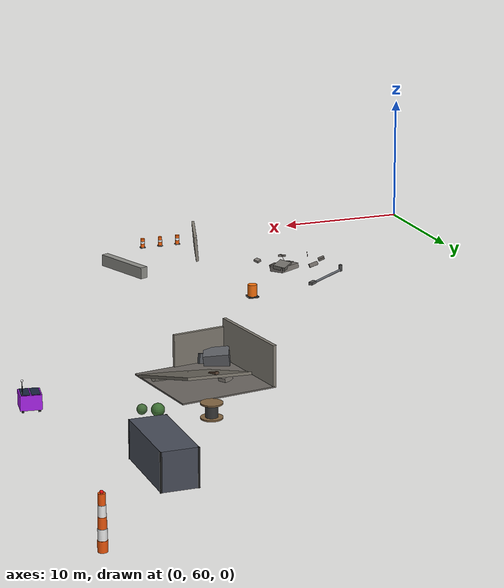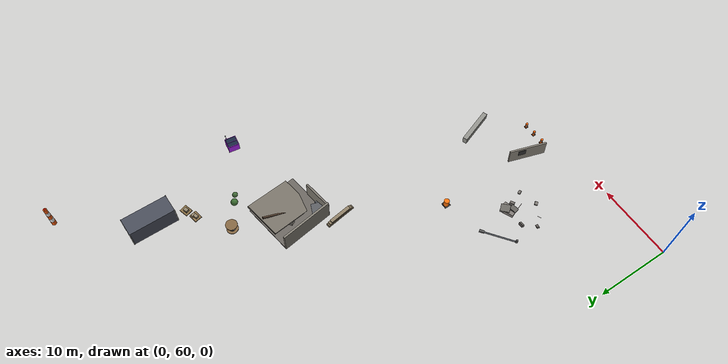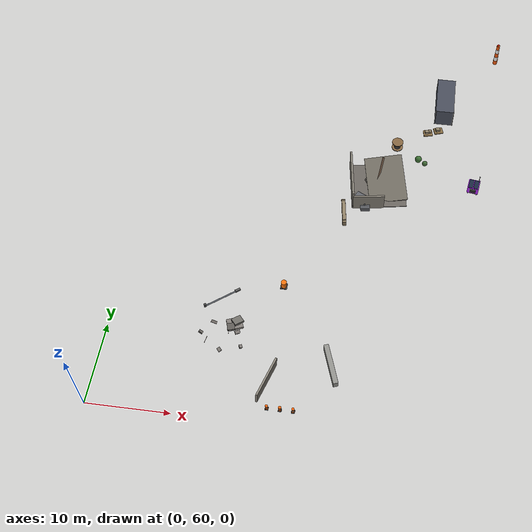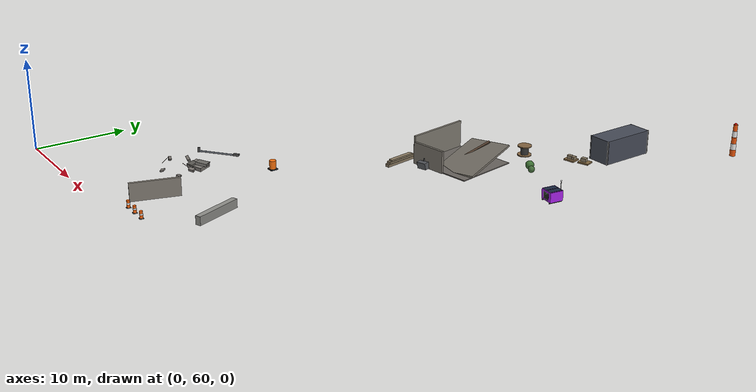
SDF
<sdf version="1.9">
 <world name="box_survey">
  <model name="survey_tower_ne">
   <static>true</static>
   <pose>45.0 120.0 0 0 0 0</pose>
   <link name="link">
    <collision name="col">
     <geometry><cylinder><radius>0.35</radius><length>3.5</length></cylinder></geometry>
     <pose>0 0 1.75 0 0 0</pose>
    </collision>
    <visual name="b1">
     <pose>0 0 0.35 0 0 0</pose>
     <geometry><cylinder><radius>0.30</radius><length>0.7</length></cylinder></geometry>
     <material><ambient>0.95 0.35 0.05 1</ambient><diffuse>0.95 0.35 0.05 1</diffuse></material>
    </visual>
    <visual name="b2">
     <pose>0 0 1.05 0 0 0</pose>
     <geometry><cylinder><radius>0.28</radius><length>0.7</length></cylinder></geometry>
     <material><ambient>0.95 0.95 0.95 1</ambient><diffuse>0.95 0.95 0.95 1</diffuse></material>
    </visual>
    <visual name="b3">
     <pose>0 0 1.75 0 0 0</pose>
     <geometry><cylinder><radius>0.26</radius><length>0.7</length></cylinder></geometry>
     <material><ambient>0.95 0.35 0.05 1</ambient><diffuse>0.95 0.35 0.05 1</diffuse></material>
    </visual>
    <visual name="b4">
     <pose>0 0 2.45 0 0 0</pose>
     <geometry><cylinder><radius>0.24</radius><length>0.7</length></cylinder></geometry>
     <material><ambient>0.95 0.95 0.95 1</ambient><diffuse>0.95 0.95 0.95 1</diffuse></material>
    </visual>
    <visual name="b5">
     <pose>0 0 3.15 0 0 0</pose>
     <geometry><cylinder><radius>0.22</radius><length>0.7</length></cylinder></geometry>
     <material><ambient>0.95 0.35 0.05 1</ambient><diffuse>0.95 0.35 0.05 1</diffuse></material>
    </visual>
    <visual name="beacon">
     <pose>0 0 3.55 0 0 0</pose>
     <geometry><sphere><radius>0.12</radius></sphere></geometry>
     <material>
      <ambient>0.9 0.05 0.05 1</ambient>
      <diffuse>0.9 0.05 0.05 1</diffuse>
      <emissive>0.7 0.05 0.05 1</emissive>
     </material>
    </visual>
   </link>
  </model>
  <model name="rock_outcrop_beta">
   <static>true</static>
   <pose>28.0 92.0 0 0 0 -0.4</pose>
   <link name="link">
    <collision name="c1">
     <pose>0 0 0.5 0 0 0</pose>
     <geometry><box><size>1.8 1.4 1.0</size></box></geometry>
    </collision>
    <visual name="v1">
     <pose>0 0 0.5 -0.15 0.1 0</pose>
     <geometry><box><size>1.8 1.4 1.0</size></box></geometry>
     <material><ambient>0.33 0.34 0.36 1</ambient><diffuse>0.37 0.38 0.40 1</diffuse></material>
    </visual>
    <visual name="v2">
     <pose>0.9 -0.5 0.35 0.15 -0.1 0.5</pose>
     <geometry><box><size>1.2 1.1 0.7</size></box></geometry>
     <material><ambient>0.29 0.30 0.32 1</ambient><diffuse>0.33 0.34 0.36 1</diffuse></material>
    </visual>
   </link>
  </model>
  <model name="jersey_barrier_3">
   <static>true</static>
   <pose>27.0 68.0 0 0 0 0.35</pose>
   <link name="link">
    <collision name="col">
     <pose>0 0 0.45 0 0 0</pose>
     <geometry><box><size>0.6 5.0 0.9</size></box></geometry>
    </collision>
    <visual name="vis">
     <pose>0 0 0.45 0 0 0</pose>
     <geometry><box><size>0.6 5.0 0.9</size></box></geometry>
     <material><ambient>0.53 0.53 0.51 1</ambient><diffuse>0.57 0.57 0.55 1</diffuse></material>
    </visual>
   </link>
  </model>
  <model name="iso_container_east">
   <static>true</static>
   <pose>38.0 110.0 0 0 0 0</pose>
   <link name="link">
    <collision name="col">
     <pose>0 0 1.3 0 0 0</pose>
     <geometry><box><size>2.44 6.06 2.60</size></box></geometry>
    </collision>
    <visual name="body">
     <pose>0 0 1.3 0 0 0</pose>
     <geometry><box><size>2.44 6.06 2.60</size></box></geometry>
     <material>
      <ambient>0.24 0.26 0.30 1</ambient>
      <diffuse>0.28 0.30 0.35 1</diffuse>
      <specular>0.1 0.1 0.1 1</specular>
     </material>
    </visual>
    <visual name="corner_post_1">
     <pose>-1.20 -3.00 1.3 0 0 0</pose>
     <geometry><box><size>0.12 0.12 2.60</size></box></geometry>
     <material><ambient>0.12 0.12 0.12 1</ambient><diffuse>0.12 0.12 0.12 1</diffuse></material>
    </visual>
    <visual name="corner_post_2">
     <pose>1.20 -3.00 1.3 0 0 0</pose>
     <geometry><box><size>0.12 0.12 2.60</size></box></geometry>
     <material><ambient>0.12 0.12 0.12 1</ambient><diffuse>0.12 0.12 0.12 1</diffuse></material>
    </visual>
    <visual name="corner_post_3">
     <pose>-1.20 3.00 1.3 0 0 0</pose>
     <geometry><box><size>0.12 0.12 2.60</size></box></geometry>
     <material><ambient>0.12 0.12 0.12 1</ambient><diffuse>0.12 0.12 0.12 1</diffuse></material>
    </visual>
    <visual name="corner_post_4">
     <pose>1.20 3.00 1.3 0 0 0</pose>
     <geometry><box><size>0.12 0.12 2.60</size></box></geometry>
     <material><ambient>0.12 0.12 0.12 1</ambient><diffuse>0.12 0.12 0.12 1</diffuse></material>
    </visual>
   </link>
  </model>
  <model name="rubble_debris_cluster_1">
   <static>true</static>
   <pose>15.0 72.0 0 0 0 0.4</pose>
   <link name="link">
    <collision name="col">
     <pose>0 0 0.35 0 0 0</pose>
     <geometry><box><size>2.2 1.8 0.7</size></box></geometry>
    </collision>
    <visual name="slab1">
     <pose>0 0 0.2 0.1 0.05 0</pose>
     <geometry><box><size>1.8 1.4 0.4</size></box></geometry>
     <material><ambient>0.45 0.44 0.42 1</ambient><diffuse>0.50 0.48 0.46 1</diffuse></material>
    </visual>
    <visual name="slab2">
     <pose>0.4 0.2 0.45 -0.1 0.15 0.3</pose>
     <geometry><box><size>1.2 1.0 0.3</size></box></geometry>
     <material><ambient>0.40 0.39 0.37 1</ambient><diffuse>0.44 0.43 0.41 1</diffuse></material>
    </visual>
    <visual name="stone">
     <pose>-0.5 -0.3 0.25 0.2 -0.1 -0.2</pose>
     <geometry><box><size>0.9 0.8 0.5</size></box></geometry>
     <material><ambient>0.35 0.34 0.32 1</ambient><diffuse>0.38 0.37 0.35 1</diffuse></material>
    </visual>
   </link>
  </model>
  <model name="target_cube_purple">
   <static>true</static>
   <pose>42.5 96.0 0 0 0 -0.15</pose>
   <link name="link">
    <collision name="col">
     <pose>0 0 0.6 0 0 0</pose>
     <geometry><box><size>1.5 1.5 1.2</size></box></geometry>
    </collision>
    <visual name="skid_left">
     <pose>-0.55 0 0.06 0 0 0</pose>
     <geometry><box><size>0.15 1.5 0.12</size></box></geometry>
     <material><ambient>0.12 0.12 0.12 1</ambient><diffuse>0.14 0.14 0.14 1</diffuse></material>
    </visual>
    <visual name="skid_right">
     <pose>0.55 0 0.06 0 0 0</pose>
     <geometry><box><size>0.15 1.5 0.12</size></box></geometry>
     <material><ambient>0.12 0.12 0.12 1</ambient><diffuse>0.14 0.14 0.14 1</diffuse></material>
    </visual>
    <visual name="body">
     <pose>0 0 0.64 0 0 0</pose>
     <geometry><box><size>1.46 1.46 1.04</size></box></geometry>
     <material>
      <ambient>0.62 0.12 0.88 1</ambient>
      <diffuse>0.68 0.14 0.94 1</diffuse>
      <specular>0.3 0.3 0.3 1</specular>
     </material>
    </visual>
    <visual name="solar_l">
     <pose>-0.34 0 1.18 0 0 0</pose>
     <geometry><box><size>0.60 1.34 0.03</size></box></geometry>
     <material>
      <ambient>0.08 0.12 0.20 1</ambient>
      <diffuse>0.10 0.15 0.25 1</diffuse>
      <specular>0.6 0.6 0.6 1</specular>
     </material>
    </visual>
    <visual name="solar_r">
     <pose>0.34 0 1.18 0 0 0</pose>
     <geometry><box><size>0.60 1.34 0.03</size></box></geometry>
     <material>
      <ambient>0.08 0.12 0.20 1</ambient>
      <diffuse>0.10 0.15 0.25 1</diffuse>
      <specular>0.6 0.6 0.6 1</specular>
     </material>
    </visual>
    <visual name="antenna_mast">
     <pose>0.55 0.55 1.65 0 0 0</pose>
     <geometry><cylinder><radius>0.025</radius><length>0.90</length></cylinder></geometry>
     <material><ambient>0.15 0.15 0.15 1</ambient><diffuse>0.20 0.20 0.20 1</diffuse></material>
    </visual>
    <visual name="radome">
     <pose>0.55 0.55 2.15 0 0 0</pose>
     <geometry><sphere><radius>0.08</radius></sphere></geometry>
     <material><ambient>0.92 0.92 0.92 1</ambient><diffuse>0.95 0.95 0.95 1</diffuse></material>
    </visual>
    <visual name="faceplate">
     <pose>0 -0.735 0.62 0 0 0</pose>
     <geometry><box><size>0.80 0.01 0.70</size></box></geometry>
     <material><ambient>0.10 0.10 0.10 1</ambient><diffuse>0.12 0.12 0.12 1</diffuse></material>
    </visual>
    <visual name="led_cluster">
     <pose>0 -0.742 0.85 0 0 0</pose>
     <geometry><box><size>0.25 0.01 0.06</size></box></geometry>
     <material>
      <ambient>0.1 0.8 0.2 1</ambient>
      <diffuse>0.1 0.9 0.2 1</diffuse>
      <emissive>0.2 0.8 0.2 1</emissive>
     </material>
    </visual>
   </link>
  </model>
  <model name="marker_orange_pylon">
   <static>true</static>
   <pose>20.0 78.0 0 0 0 0</pose>
   <link name="link">
    <collision name="col">
     <pose>0 0 0.5 0 0 0</pose>
     <geometry><cylinder><radius>0.4</radius><length>1.0</length></cylinder></geometry>
    </collision>
    <visual name="cone_base">
     <pose>0 0 0.05 0 0 0</pose>
     <geometry><box><size>0.8 0.8 0.1</size></box></geometry>
     <material><ambient>0.2 0.2 0.2 1</ambient><diffuse>0.2 0.2 0.2 1</diffuse></material>
    </visual>
    <visual name="cone_body">
     <pose>0 0 0.55 0 0 0</pose>
     <geometry><cylinder><radius>0.35</radius><length>0.9</length></cylinder></geometry>
     <material><ambient>0.95 0.42 0.04 1</ambient><diffuse>0.98 0.45 0.05 1</diffuse></material>
    </visual>
   </link>
  </model>
  <model name="collapsed_building">
   <static>true</static>
   <pose>30.0 95.0 0 0 0 0.15</pose>
   <link name="link">
    <visual name="wall_w">
     <pose>-3.5 0 1.5 0 0 0</pose>
     <geometry><box><size>0.25 7.0 3.0</size></box></geometry>
     <material><ambient>0.48 0.46 0.42 1</ambient><diffuse>0.52 0.50 0.46 1</diffuse></material>
    </visual>
    <collision name="col_w">
     <pose>-3.5 0 1.5 0 0 0</pose>
     <geometry><box><size>0.25 7.0 3.0</size></box></geometry>
    </collision>
    <visual name="wall_s">
     <pose>-1.5 -3.5 1.2 0 0 0</pose>
     <geometry><box><size>4.0 0.25 2.4</size></box></geometry>
     <material><ambient>0.46 0.44 0.40 1</ambient><diffuse>0.50 0.48 0.44 1</diffuse></material>
    </visual>
    <collision name="col_s">
     <pose>-1.5 -3.5 1.2 0 0 0</pose>
     <geometry><box><size>4.0 0.25 2.4</size></box></geometry>
    </collision>
    <visual name="roof_slab">
     <pose>1.0 0.5 0.8 0.25 -0.1 0.05</pose>
     <geometry><box><size>5.0 6.5 0.20</size></box></geometry>
     <material><ambient>0.42 0.40 0.36 1</ambient><diffuse>0.46 0.44 0.40 1</diffuse></material>
    </visual>
    <collision name="col_roof">
     <pose>1.0 0.5 0.8 0.25 -0.1 0.05</pose>
     <geometry><box><size>5.0 6.5 0.20</size></box></geometry>
    </collision>
    <visual name="floor">
     <pose>0 0 0.05 0 0 0</pose>
     <geometry><box><size>7.0 7.0 0.10</size></box></geometry>
     <material><ambient>0.38 0.36 0.34 1</ambient><diffuse>0.42 0.40 0.38 1</diffuse></material>
    </visual>
    <visual name="column">
     <pose>2.0 -1.5 0.2 0 1.4 0.3</pose>
     <geometry><cylinder><radius>0.20</radius><length>2.8</length></cylinder></geometry>
     <material><ambient>0.50 0.48 0.44 1</ambient><diffuse>0.54 0.52 0.48 1</diffuse></material>
    </visual>
    <visual name="ibeam">
     <pose>0.2 1.2 0.95 0.35 0.25 -0.2</pose>
     <geometry><box><size>0.25 4.8 0.18</size></box></geometry>
     <material>
      <ambient>0.25 0.18 0.14 1</ambient>
      <diffuse>0.32 0.24 0.18 1</diffuse>
      <specular>0.2 0.2 0.2 1</specular>
     </material>
    </visual>
    <visual name="block_1">
     <pose>-1.2 0.8 0.25 0.1 0.2 0.4</pose>
     <geometry><box><size>0.8 0.6 0.4</size></box></geometry>
     <material><ambient>0.45 0.43 0.40 1</ambient><diffuse>0.49 0.47 0.44 1</diffuse></material>
    </visual>
    <visual name="block_2">
     <pose>0.8 -0.8 0.20 -0.2 0.1 0.6</pose>
     <geometry><box><size>0.7 0.5 0.35</size></box></geometry>
     <material><ambient>0.43 0.41 0.38 1</ambient><diffuse>0.47 0.45 0.42 1</diffuse></material>
    </visual>
   </link>
  </model>
  <model name="rubble_scatter_1">
   <static>true</static>
   <pose>13.0 70.0 0 0 0 0</pose>
   <link name="link">
    <visual name="frag_a">
     <pose>2.5 1.0 0.12 0.3 0.1 0.5</pose>
     <geometry><box><size>0.6 0.4 0.25</size></box></geometry>
     <material><ambient>0.42 0.40 0.38 1</ambient><diffuse>0.46 0.44 0.42 1</diffuse></material>
    </visual>
    <visual name="frag_b">
     <pose>-1.8 0.5 0.10 -0.2 0.4 -0.3</pose>
     <geometry><box><size>0.5 0.3 0.20</size></box></geometry>
     <material><ambient>0.38 0.36 0.34 1</ambient><diffuse>0.42 0.40 0.38 1</diffuse></material>
    </visual>
    <visual name="frag_c">
     <pose>0.8 -1.5 0.08 0.1 -0.2 0.7</pose>
     <geometry><box><size>0.4 0.5 0.15</size></box></geometry>
     <material><ambient>0.44 0.42 0.40 1</ambient><diffuse>0.48 0.46 0.44 1</diffuse></material>
    </visual>
    <visual name="frag_d">
     <pose>-0.5 2.0 0.15 0.4 0.3 -0.1</pose>
     <geometry><box><size>0.7 0.3 0.30</size></box></geometry>
     <material><ambient>0.40 0.38 0.36 1</ambient><diffuse>0.44 0.42 0.40 1</diffuse></material>
    </visual>
    <visual name="frag_e">
     <pose>3.2 -0.8 0.10 -0.15 0.25 0.4</pose>
     <geometry><box><size>0.35 0.45 0.18</size></box></geometry>
     <material><ambient>0.46 0.44 0.42 1</ambient><diffuse>0.50 0.48 0.46 1</diffuse></material>
    </visual>
    <visual name="rebar_a">
     <pose>1.5 0.8 0.3 0.8 0.2 0</pose>
     <geometry><cylinder><radius>0.015</radius><length>1.2</length></cylinder></geometry>
     <material><ambient>0.30 0.25 0.20 1</ambient><diffuse>0.35 0.28 0.22 1</diffuse></material>
    </visual>
    <visual name="rebar_b">
     <pose>-1.0 -0.5 0.25 -0.5 0.6 0.3</pose>
     <geometry><cylinder><radius>0.015</radius><length>0.9</length></cylinder></geometry>
     <material><ambient>0.32 0.26 0.20 1</ambient><diffuse>0.36 0.30 0.24 1</diffuse></material>
    </visual>
   </link>
  </model>
  <model name="fallen_street_lamp">
   <static>true</static>
   <pose>11.0 74.0 0 0 0 0.65</pose>
   <link name="link">
    <visual name="stub">
     <pose>0 0 0.25 0 0 0</pose>
     <geometry><cylinder><radius>0.14</radius><length>0.50</length></cylinder></geometry>
     <material><ambient>0.25 0.25 0.25 1</ambient><diffuse>0.30 0.30 0.30 1</diffuse></material>
    </visual>
    <visual name="shaft">
     <pose>2.2 0 0.10 0 1.5708 0</pose>
     <geometry><cylinder><radius>0.09</radius><length>4.2</length></cylinder></geometry>
     <material><ambient>0.35 0.36 0.38 1</ambient><diffuse>0.40 0.42 0.45 1</diffuse></material>
    </visual>
    <visual name="fixture">
     <pose>4.4 0 0.15 0 0 0</pose>
     <geometry><box><size>0.65 0.30 0.22</size></box></geometry>
     <material><ambient>0.30 0.30 0.30 1</ambient><diffuse>0.35 0.35 0.35 1</diffuse></material>
    </visual>
   </link>
  </model>
  <model name="industrial_cable_spool">
   <static>true</static>
   <pose>32.0 102.0 0 0 0 0.5</pose>
   <link name="link">
    <visual name="flange_bot">
     <pose>0 0 0.05 0 0 0</pose>
     <geometry><cylinder><radius>0.75</radius><length>0.10</length></cylinder></geometry>
     <material><ambient>0.45 0.35 0.22 1</ambient><diffuse>0.52 0.40 0.26 1</diffuse></material>
    </visual>
    <visual name="drum">
     <pose>0 0 0.55 0 0 0</pose>
     <geometry><cylinder><radius>0.42</radius><length>0.90</length></cylinder></geometry>
     <material><ambient>0.18 0.18 0.18 1</ambient><diffuse>0.22 0.22 0.22 1</diffuse></material>
    </visual>
    <visual name="flange_top">
     <pose>0 0 1.05 0 0 0</pose>
     <geometry><cylinder><radius>0.75</radius><length>0.10</length></cylinder></geometry>
     <material><ambient>0.45 0.35 0.22 1</ambient><diffuse>0.52 0.40 0.26 1</diffuse></material>
    </visual>
    <collision name="col">
     <pose>0 0 0.55 0 0 0</pose>
     <geometry><cylinder><radius>0.75</radius><length>1.10</length></cylinder></geometry>
    </collision>
   </link>
  </model>
  <model name="hazard_traffic_cones">
   <static>true</static>
   <pose>22.0 62.0 0 0 0 0</pose>
   <link name="link">
    <visual name="c1_base">
     <pose>-1.5 0 0.025 0 0 0</pose>
     <geometry><box><size>0.40 0.40 0.05</size></box></geometry>
     <material><ambient>0.1 0.1 0.1 1</ambient><diffuse>0.1 0.1 0.1 1</diffuse></material>
    </visual>
    <visual name="c1_cone">
     <pose>-1.5 0 0.40 0 0 0</pose>
     <geometry><cylinder><radius>0.16</radius><length>0.75</length></cylinder></geometry>
     <material><ambient>0.95 0.35 0.02 1</ambient><diffuse>0.98 0.40 0.05 1</diffuse></material>
    </visual>
    <visual name="c1_collar">
     <pose>-1.5 0 0.45 0 0 0</pose>
     <geometry><cylinder><radius>0.165</radius><length>0.18</length></cylinder></geometry>
     <material><ambient>0.95 0.95 0.95 1</ambient><diffuse>0.98 0.98 0.98 1</diffuse></material>
    </visual>
    <visual name="c2_base">
     <pose>0 0 0.025 0 0 0</pose>
     <geometry><box><size>0.40 0.40 0.05</size></box></geometry>
     <material><ambient>0.1 0.1 0.1 1</ambient><diffuse>0.1 0.1 0.1 1</diffuse></material>
    </visual>
    <visual name="c2_cone">
     <pose>0 0 0.40 0 0 0</pose>
     <geometry><cylinder><radius>0.16</radius><length>0.75</length></cylinder></geometry>
     <material><ambient>0.95 0.35 0.02 1</ambient><diffuse>0.98 0.40 0.05 1</diffuse></material>
    </visual>
    <visual name="c2_collar">
     <pose>0 0 0.45 0 0 0</pose>
     <geometry><cylinder><radius>0.165</radius><length>0.18</length></cylinder></geometry>
     <material><ambient>0.95 0.95 0.95 1</ambient><diffuse>0.98 0.98 0.98 1</diffuse></material>
    </visual>
    <visual name="c3_base">
     <pose>1.5 0 0.025 0 0 0</pose>
     <geometry><box><size>0.40 0.40 0.05</size></box></geometry>
     <material><ambient>0.1 0.1 0.1 1</ambient><diffuse>0.1 0.1 0.1 1</diffuse></material>
    </visual>
    <visual name="c3_cone">
     <pose>1.5 0 0.40 0 0 0</pose>
     <geometry><cylinder><radius>0.16</radius><length>0.75</length></cylinder></geometry>
     <material><ambient>0.95 0.35 0.02 1</ambient><diffuse>0.98 0.40 0.05 1</diffuse></material>
    </visual>
    <visual name="c3_collar">
     <pose>1.5 0 0.45 0 0 0</pose>
     <geometry><cylinder><radius>0.165</radius><length>0.18</length></cylinder></geometry>
     <material><ambient>0.95 0.95 0.95 1</ambient><diffuse>0.98 0.98 0.98 1</diffuse></material>
    </visual>
   </link>
  </model>
  <model name="sandbag_wall">
   <static>true</static>
   <pose>26.0 90.0 0 0 0 0.15</pose>
   <link name="link">
    <visual name="row1">
     <pose>0 0 0.15 0 0 0</pose>
     <geometry><box><size>0.5 4.0 0.30</size></box></geometry>
     <material><ambient>0.50 0.45 0.35 1</ambient><diffuse>0.54 0.48 0.38 1</diffuse></material>
    </visual>
    <visual name="row2">
     <pose>0 0 0.40 0 0 0</pose>
     <geometry><box><size>0.48 3.6 0.22</size></box></geometry>
     <material><ambient>0.48 0.43 0.33 1</ambient><diffuse>0.52 0.46 0.36 1</diffuse></material>
    </visual>
    <visual name="row3">
     <pose>0 0 0.58 0 0 0</pose>
     <geometry><box><size>0.45 3.0 0.18</size></box></geometry>
     <material><ambient>0.52 0.47 0.37 1</ambient><diffuse>0.56 0.50 0.40 1</diffuse></material>
    </visual>
    <collision name="col">
     <pose>0 0 0.35 0 0 0</pose>
     <geometry><box><size>0.5 4.0 0.70</size></box></geometry>
    </collision>
   </link>
  </model>
  <model name="damaged_wall">
   <static>true</static>
   <pose>20.0 65.0 0 0 0 -0.3</pose>
   <link name="link">
    <visual name="wall">
     <pose>0 0 1.0 0 0.08 0</pose>
     <geometry><box><size>0.22 5.0 2.0</size></box></geometry>
     <material><ambient>0.50 0.48 0.44 1</ambient><diffuse>0.54 0.52 0.48 1</diffuse></material>
    </visual>
    <visual name="window">
     <pose>0.01 0.8 1.3 0 0.08 0</pose>
     <geometry><box><size>0.24 1.0 0.8</size></box></geometry>
     <material><ambient>0.18 0.18 0.18 1</ambient><diffuse>0.20 0.20 0.20 1</diffuse></material>
    </visual>
    <collision name="col">
     <pose>0 0 1.0 0 0.08 0</pose>
     <geometry><box><size>0.22 5.0 2.0</size></box></geometry>
    </collision>
   </link>
  </model>
  <model name="shrub_cluster_ne">
   <static>true</static>
   <pose>35.0 100.0 0 0 0 0</pose>
   <link name="link">
    <visual name="s1">
     <pose>0 0 0.30 0 0 0</pose>
     <geometry><sphere><radius>0.45</radius></sphere></geometry>
     <material><ambient>0.20 0.40 0.16 1</ambient><diffuse>0.24 0.44 0.20 1</diffuse></material>
    </visual>
    <visual name="s2">
     <pose>0.9 -0.6 0.25 0 0 0</pose>
     <geometry><sphere><radius>0.35</radius></sphere></geometry>
     <material><ambient>0.22 0.38 0.18 1</ambient><diffuse>0.26 0.42 0.22 1</diffuse></material>
    </visual>
   </link>
  </model>
  <model name="supply_pallets">
   <static>true</static>
   <pose>36.0 105.0 0 0 0 0.2</pose>
   <link name="link">
    <visual name="pallet_1">
     <pose>0 0 0.08 0 0 0</pose>
     <geometry><box><size>1.2 1.0 0.15</size></box></geometry>
     <material><ambient>0.50 0.40 0.25 1</ambient><diffuse>0.55 0.44 0.28 1</diffuse></material>
    </visual>
    <visual name="box_a">
     <pose>-0.15 0 0.35 0 0 0.05</pose>
     <geometry><box><size>0.5 0.4 0.38</size></box></geometry>
     <material><ambient>0.55 0.50 0.40 1</ambient><diffuse>0.60 0.54 0.44 1</diffuse></material>
    </visual>
    <visual name="box_b">
     <pose>0.25 0.1 0.30 0 0 -0.08</pose>
     <geometry><box><size>0.4 0.5 0.30</size></box></geometry>
     <material><ambient>0.50 0.45 0.35 1</ambient><diffuse>0.55 0.49 0.39 1</diffuse></material>
    </visual>
    <visual name="pallet_2">
     <pose>1.5 0.3 0.08 0 0 0.1</pose>
     <geometry><box><size>1.2 1.0 0.15</size></box></geometry>
     <material><ambient>0.48 0.38 0.23 1</ambient><diffuse>0.52 0.42 0.26 1</diffuse></material>
    </visual>
    <visual name="box_c">
     <pose>1.4 0.3 0.35 0 0 0.12</pose>
     <geometry><box><size>0.55 0.45 0.38</size></box></geometry>
     <material><ambient>0.52 0.47 0.37 1</ambient><diffuse>0.56 0.51 0.41 1</diffuse></material>
    </visual>
   </link>
  </model>
 </world>
</sdf>
